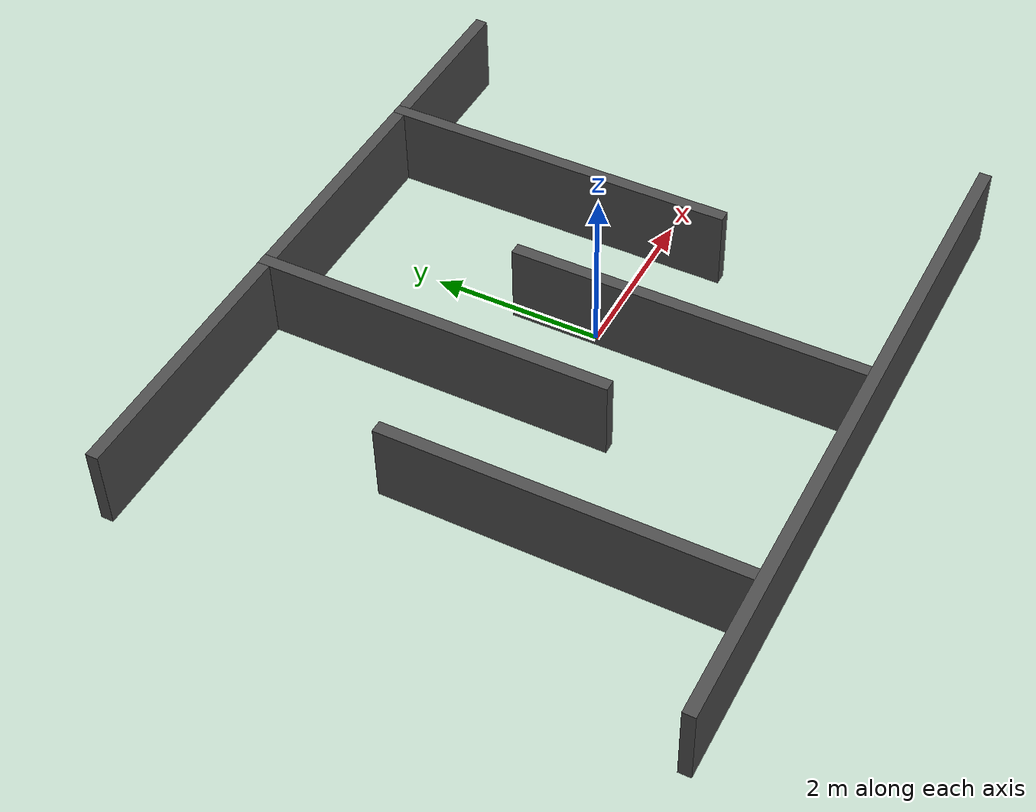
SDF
<?xml version='1.0'?>
<sdf version='1.7'>
  <model name='parede'>
    <link name='Wall_1_clone'>
      <pose>-0.178934 -3.10555 0 0 -0 3.14</pose>
      <self_collide>0</self_collide>
      <enable_wind>0</enable_wind>
      <kinematic>0</kinematic>
      <inertial>
        <inertia>
          <ixx>0</ixx>
          <ixy>0</ixy>
          <ixz>0</ixz>
          <iyy>0</iyy>
          <iyz>0</iyz>
          <izz>0</izz>
        </inertia>
        <mass>0</mass>
        <pose>0 0 0 0 -0 0</pose>
      </inertial>
      <gravity>1</gravity>
      <visual name='Wall_1_Visual'>
        <pose>0 0 0 0 -0 0</pose>
        <geometry>
          <box>
            <size>8.44451 0.15 1</size>
          </box>
        </geometry>
        <material>
          <script>
            <uri>file://media/materials/scripts/gazebo.material</uri>
            <name>Gazebo/DarkGrey</name>
          </script>
          <ambient>0.5 0.5 0.5 1</ambient>
          <shader type='pixel'/>
        </material>
        <meta>
          <layer>0</layer>
        </meta>
        <transparency>0</transparency>
        <cast_shadows>1</cast_shadows>
      </visual>
      <collision name='Wall_1_Collision'>
        <laser_retro>0</laser_retro>
        <max_contacts>10</max_contacts>
        <pose>0 0 0 0 -0 0</pose>
        <geometry>
          <box>
            <size>8.44451 0.15 1</size>
          </box>
        </geometry>
        <surface>
          <friction>
            <ode>
              <mu>1</mu>
              <mu2>1</mu2>
              <fdir1>0 0 0</fdir1>
              <slip1>0</slip1>
              <slip2>0</slip2>
            </ode>
            <torsional>
              <coefficient>1</coefficient>
              <patch_radius>0</patch_radius>
              <surface_radius>0</surface_radius>
              <use_patch_radius>1</use_patch_radius>
              <ode>
                <slip>0</slip>
              </ode>
            </torsional>
          </friction>
          <bounce>
            <restitution_coefficient>0</restitution_coefficient>
            <threshold>1e+06</threshold>
          </bounce>
          <contact>
            <collide_without_contact>0</collide_without_contact>
            <collide_without_contact_bitmask>1</collide_without_contact_bitmask>
            <collide_bitmask>1</collide_bitmask>
            <ode>
              <soft_cfm>0</soft_cfm>
              <soft_erp>0.2</soft_erp>
              <kp>1e+13</kp>
              <kd>1</kd>
              <max_vel>0.01</max_vel>
              <min_depth>0</min_depth>
            </ode>
            <bullet>
              <split_impulse>1</split_impulse>
              <split_impulse_penetration_threshold>-0.01</split_impulse_penetration_threshold>
              <soft_cfm>0</soft_cfm>
              <soft_erp>0.2</soft_erp>
              <kp>1e+13</kp>
              <kd>1</kd>
            </bullet>
          </contact>
        </surface>
      </collision>
    </link>
    <link name='Wall_1_clone_clone'>
      <pose>-0.13867 3.63578 -0 0 -0 3.14</pose>
      <self_collide>0</self_collide>
      <enable_wind>0</enable_wind>
      <kinematic>0</kinematic>
      <inertial>
        <inertia>
          <ixx>0</ixx>
          <ixy>0</ixy>
          <ixz>0</ixz>
          <iyy>0</iyy>
          <iyz>0</iyz>
          <izz>0</izz>
        </inertia>
        <mass>0</mass>
        <pose>0 0 0 0 -0 0</pose>
      </inertial>
      <gravity>1</gravity>
      <visual name='Wall_1_Visual'>
        <pose>0 0 0 0 -0 0</pose>
        <geometry>
          <box>
            <size>8.32083 0.15 1</size>
          </box>
        </geometry>
        <material>
          <script>
            <uri>file://media/materials/scripts/gazebo.material</uri>
            <name>Gazebo/DarkGrey</name>
          </script>
          <ambient>0.5 0.5 0.5 1</ambient>
          <shader type='pixel'/>
        </material>
        <meta>
          <layer>0</layer>
        </meta>
        <transparency>0</transparency>
        <cast_shadows>1</cast_shadows>
      </visual>
      <collision name='Wall_1_Collision'>
        <laser_retro>0</laser_retro>
        <max_contacts>10</max_contacts>
        <pose>0 0 0 0 -0 0</pose>
        <geometry>
          <box>
            <size>8.32083 0.15 1</size>
          </box>
        </geometry>
        <surface>
          <friction>
            <ode>
              <mu>1</mu>
              <mu2>1</mu2>
              <fdir1>0 0 0</fdir1>
              <slip1>0</slip1>
              <slip2>0</slip2>
            </ode>
            <torsional>
              <coefficient>1</coefficient>
              <patch_radius>0</patch_radius>
              <surface_radius>0</surface_radius>
              <use_patch_radius>1</use_patch_radius>
              <ode>
                <slip>0</slip>
              </ode>
            </torsional>
          </friction>
          <bounce>
            <restitution_coefficient>0</restitution_coefficient>
            <threshold>1e+06</threshold>
          </bounce>
          <contact>
            <collide_without_contact>0</collide_without_contact>
            <collide_without_contact_bitmask>1</collide_without_contact_bitmask>
            <collide_bitmask>1</collide_bitmask>
            <ode>
              <soft_cfm>0</soft_cfm>
              <soft_erp>0.2</soft_erp>
              <kp>1e+13</kp>
              <kd>1</kd>
              <max_vel>0.01</max_vel>
              <min_depth>0</min_depth>
            </ode>
            <bullet>
              <split_impulse>1</split_impulse>
              <split_impulse_penetration_threshold>-0.01</split_impulse_penetration_threshold>
              <soft_cfm>0</soft_cfm>
              <soft_erp>0.2</soft_erp>
              <kp>1e+13</kp>
              <kd>1</kd>
            </bullet>
          </contact>
        </surface>
      </collision>
    </link>
    <link name='Wall_2_clone_clone'>
      <pose>1.98576 1.52006 0 0 -0 1.57</pose>
      <self_collide>0</self_collide>
      <enable_wind>0</enable_wind>
      <kinematic>0</kinematic>
      <inertial>
        <inertia>
          <ixx>0</ixx>
          <ixy>0</ixy>
          <ixz>0</ixz>
          <iyy>0</iyy>
          <iyz>0</iyz>
          <izz>0</izz>
        </inertia>
        <mass>0</mass>
        <pose>0 0 0 0 -0 0</pose>
      </inertial>
      <gravity>1</gravity>
      <visual name='Wall_2_Visual'>
        <pose>0 0 0 0 -0 0</pose>
        <geometry>
          <box>
            <size>4.37195 0.15 1</size>
          </box>
        </geometry>
        <material>
          <script>
            <uri>file://media/materials/scripts/gazebo.material</uri>
            <name>Gazebo/DarkGrey</name>
          </script>
          <ambient>0.5 0.5 0.5 1</ambient>
          <shader type='pixel'/>
        </material>
        <meta>
          <layer>0</layer>
        </meta>
        <transparency>0</transparency>
        <cast_shadows>1</cast_shadows>
      </visual>
      <collision name='Wall_2_Collision'>
        <laser_retro>0</laser_retro>
        <max_contacts>10</max_contacts>
        <pose>0 0 0 0 -0 0</pose>
        <geometry>
          <box>
            <size>4.37195 0.15 1</size>
          </box>
        </geometry>
        <surface>
          <friction>
            <ode>
              <mu>1</mu>
              <mu2>1</mu2>
              <fdir1>0 0 0</fdir1>
              <slip1>0</slip1>
              <slip2>0</slip2>
            </ode>
            <torsional>
              <coefficient>1</coefficient>
              <patch_radius>0</patch_radius>
              <surface_radius>0</surface_radius>
              <use_patch_radius>1</use_patch_radius>
              <ode>
                <slip>0</slip>
              </ode>
            </torsional>
          </friction>
          <bounce>
            <restitution_coefficient>0</restitution_coefficient>
            <threshold>1e+06</threshold>
          </bounce>
          <contact>
            <collide_without_contact>0</collide_without_contact>
            <collide_without_contact_bitmask>1</collide_without_contact_bitmask>
            <collide_bitmask>1</collide_bitmask>
            <ode>
              <soft_cfm>0</soft_cfm>
              <soft_erp>0.2</soft_erp>
              <kp>1e+13</kp>
              <kd>1</kd>
              <max_vel>0.01</max_vel>
              <min_depth>0</min_depth>
            </ode>
            <bullet>
              <split_impulse>1</split_impulse>
              <split_impulse_penetration_threshold>-0.01</split_impulse_penetration_threshold>
              <soft_cfm>0</soft_cfm>
              <soft_erp>0.2</soft_erp>
              <kp>1e+13</kp>
              <kd>1</kd>
            </bullet>
          </contact>
        </surface>
      </collision>
    </link>
    <link name='Wall_2_clone_clone_clone'>
      <pose>-1.01252 1.52959 0 0 -0 1.57</pose>
      <self_collide>0</self_collide>
      <enable_wind>0</enable_wind>
      <kinematic>0</kinematic>
      <inertial>
        <inertia>
          <ixx>0</ixx>
          <ixy>0</ixy>
          <ixz>0</ixz>
          <iyy>0</iyy>
          <iyz>0</iyz>
          <izz>0</izz>
        </inertia>
        <mass>0</mass>
        <pose>0 0 0 0 -0 0</pose>
      </inertial>
      <gravity>1</gravity>
      <visual name='Wall_2_Visual'>
        <pose>0 0 0 0 -0 0</pose>
        <geometry>
          <box>
            <size>4.37195 0.15 1</size>
          </box>
        </geometry>
        <material>
          <script>
            <uri>file://media/materials/scripts/gazebo.material</uri>
            <name>Gazebo/DarkGrey</name>
          </script>
          <ambient>0.5 0.5 0.5 1</ambient>
          <shader type='pixel'/>
        </material>
        <meta>
          <layer>0</layer>
        </meta>
        <transparency>0</transparency>
        <cast_shadows>1</cast_shadows>
      </visual>
      <collision name='Wall_2_Collision'>
        <laser_retro>0</laser_retro>
        <max_contacts>10</max_contacts>
        <pose>0 0 0 0 -0 0</pose>
        <geometry>
          <box>
            <size>4.37195 0.15 1</size>
          </box>
        </geometry>
        <surface>
          <friction>
            <ode>
              <mu>1</mu>
              <mu2>1</mu2>
              <fdir1>0 0 0</fdir1>
              <slip1>0</slip1>
              <slip2>0</slip2>
            </ode>
            <torsional>
              <coefficient>1</coefficient>
              <patch_radius>0</patch_radius>
              <surface_radius>0</surface_radius>
              <use_patch_radius>1</use_patch_radius>
              <ode>
                <slip>0</slip>
              </ode>
            </torsional>
          </friction>
          <bounce>
            <restitution_coefficient>0</restitution_coefficient>
            <threshold>1e+06</threshold>
          </bounce>
          <contact>
            <collide_without_contact>0</collide_without_contact>
            <collide_without_contact_bitmask>1</collide_without_contact_bitmask>
            <collide_bitmask>1</collide_bitmask>
            <ode>
              <soft_cfm>0</soft_cfm>
              <soft_erp>0.2</soft_erp>
              <kp>1e+13</kp>
              <kd>1</kd>
              <max_vel>0.01</max_vel>
              <min_depth>0</min_depth>
            </ode>
            <bullet>
              <split_impulse>1</split_impulse>
              <split_impulse_penetration_threshold>-0.01</split_impulse_penetration_threshold>
              <soft_cfm>0</soft_cfm>
              <soft_erp>0.2</soft_erp>
              <kp>1e+13</kp>
              <kd>1</kd>
            </bullet>
          </contact>
        </surface>
      </collision>
    </link>
    <link name='Wall_2_clone_clone_clone_clone'>
      <pose>-2.62868 -0.921279 0 0 -0 1.57</pose>
      <self_collide>0</self_collide>
      <enable_wind>0</enable_wind>
      <kinematic>0</kinematic>
      <inertial>
        <inertia>
          <ixx>0</ixx>
          <ixy>0</ixy>
          <ixz>0</ixz>
          <iyy>0</iyy>
          <iyz>0</iyz>
          <izz>0</izz>
        </inertia>
        <mass>0</mass>
        <pose>0 0 0 0 -0 0</pose>
      </inertial>
      <gravity>1</gravity>
      <visual name='Wall_2_Visual'>
        <pose>0 0 0 0 -0 0</pose>
        <geometry>
          <box>
            <size>4.37195 0.15 1</size>
          </box>
        </geometry>
        <material>
          <script>
            <uri>file://media/materials/scripts/gazebo.material</uri>
            <name>Gazebo/DarkGrey</name>
          </script>
          <ambient>0.5 0.5 0.5 1</ambient>
          <shader type='pixel'/>
        </material>
        <meta>
          <layer>0</layer>
        </meta>
        <transparency>0</transparency>
        <cast_shadows>1</cast_shadows>
      </visual>
      <collision name='Wall_2_Collision'>
        <laser_retro>0</laser_retro>
        <max_contacts>10</max_contacts>
        <pose>0 0 0 0 -0 0</pose>
        <geometry>
          <box>
            <size>4.37195 0.15 1</size>
          </box>
        </geometry>
        <surface>
          <friction>
            <ode>
              <mu>1</mu>
              <mu2>1</mu2>
              <fdir1>0 0 0</fdir1>
              <slip1>0</slip1>
              <slip2>0</slip2>
            </ode>
            <torsional>
              <coefficient>1</coefficient>
              <patch_radius>0</patch_radius>
              <surface_radius>0</surface_radius>
              <use_patch_radius>1</use_patch_radius>
              <ode>
                <slip>0</slip>
              </ode>
            </torsional>
          </friction>
          <bounce>
            <restitution_coefficient>0</restitution_coefficient>
            <threshold>1e+06</threshold>
          </bounce>
          <contact>
            <collide_without_contact>0</collide_without_contact>
            <collide_without_contact_bitmask>1</collide_without_contact_bitmask>
            <collide_bitmask>1</collide_bitmask>
            <ode>
              <soft_cfm>0</soft_cfm>
              <soft_erp>0.2</soft_erp>
              <kp>1e+13</kp>
              <kd>1</kd>
              <max_vel>0.01</max_vel>
              <min_depth>0</min_depth>
            </ode>
            <bullet>
              <split_impulse>1</split_impulse>
              <split_impulse_penetration_threshold>-0.01</split_impulse_penetration_threshold>
              <soft_cfm>0</soft_cfm>
              <soft_erp>0.2</soft_erp>
              <kp>1e+13</kp>
              <kd>1</kd>
            </bullet>
          </contact>
        </surface>
      </collision>
    </link>
    <link name='Wall_2_clone_clone_clone_clone_0'>
      <pose>0.420085 -0.940682 0 0 -0 1.57</pose>
      <self_collide>0</self_collide>
      <enable_wind>0</enable_wind>
      <kinematic>0</kinematic>
      <inertial>
        <inertia>
          <ixx>0</ixx>
          <ixy>0</ixy>
          <ixz>0</ixz>
          <iyy>0</iyy>
          <iyz>0</iyz>
          <izz>0</izz>
        </inertia>
        <mass>0</mass>
        <pose>0 0 0 0 -0 0</pose>
      </inertial>
      <gravity>1</gravity>
      <visual name='Wall_2_Visual'>
        <pose>0 0 0 0 -0 0</pose>
        <geometry>
          <box>
            <size>4.37195 0.15 1</size>
          </box>
        </geometry>
        <material>
          <script>
            <uri>file://media/materials/scripts/gazebo.material</uri>
            <name>Gazebo/DarkGrey</name>
          </script>
          <ambient>0.5 0.5 0.5 1</ambient>
          <shader type='pixel'/>
        </material>
        <meta>
          <layer>0</layer>
        </meta>
        <transparency>0</transparency>
        <cast_shadows>1</cast_shadows>
      </visual>
      <collision name='Wall_2_Collision'>
        <laser_retro>0</laser_retro>
        <max_contacts>10</max_contacts>
        <pose>0 0 0 0 -0 0</pose>
        <geometry>
          <box>
            <size>4.37195 0.15 1</size>
          </box>
        </geometry>
        <surface>
          <friction>
            <ode>
              <mu>1</mu>
              <mu2>1</mu2>
              <fdir1>0 0 0</fdir1>
              <slip1>0</slip1>
              <slip2>0</slip2>
            </ode>
            <torsional>
              <coefficient>1</coefficient>
              <patch_radius>0</patch_radius>
              <surface_radius>0</surface_radius>
              <use_patch_radius>1</use_patch_radius>
              <ode>
                <slip>0</slip>
              </ode>
            </torsional>
          </friction>
          <bounce>
            <restitution_coefficient>0</restitution_coefficient>
            <threshold>1e+06</threshold>
          </bounce>
          <contact>
            <collide_without_contact>0</collide_without_contact>
            <collide_without_contact_bitmask>1</collide_without_contact_bitmask>
            <collide_bitmask>1</collide_bitmask>
            <ode>
              <soft_cfm>0</soft_cfm>
              <soft_erp>0.2</soft_erp>
              <kp>1e+13</kp>
              <kd>1</kd>
              <max_vel>0.01</max_vel>
              <min_depth>0</min_depth>
            </ode>
            <bullet>
              <split_impulse>1</split_impulse>
              <split_impulse_penetration_threshold>-0.01</split_impulse_penetration_threshold>
              <soft_cfm>0</soft_cfm>
              <soft_erp>0.2</soft_erp>
              <kp>1e+13</kp>
              <kd>1</kd>
            </bullet>
          </contact>
        </surface>
      </collision>
    </link>
    <static>1</static>
    <allow_auto_disable>1</allow_auto_disable>
  </model>
</sdf>
